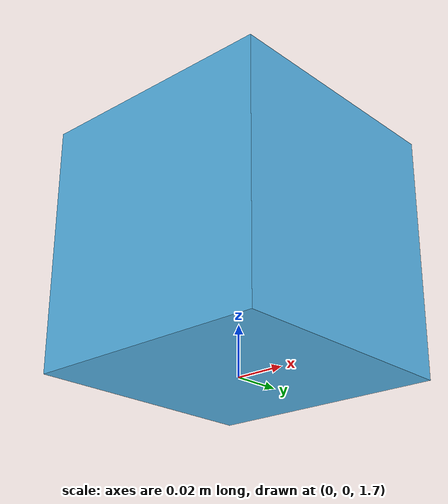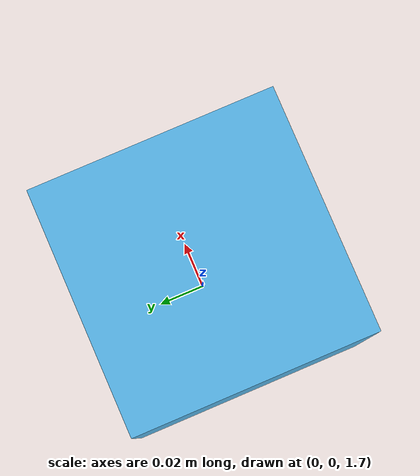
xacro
<?xml version="1.0"?>
<robot xmlns:xacro="http://www.ros.org/wiki/xacro" name="example">
  <!-- Base Footprint -->
  <link name="base_footprint" />

  <!-- Base Link -->
  <joint name="footprint" type="fixed" >
   <parent link="base_footprint" />
    <child link="base_link" />
    <origin xyz="0 0 1.75" rpy="0 0 0" />
  </joint>
  <link name="base_link" >
    <visual>
      <geometry>
        <box size="0.1 0.1 0.1" />
      </geometry>
    </visual>
    <collision>
      <geometry>
        <box size="0.1 0.1 0.1" />
      </geometry>
    </collision>
    <inertial>
      <origin xyz="0 0 0"/>
      <mass value="10"/>
      <inertia ixx="3.0" ixy="0.0" ixz="0.0"
               iyy="3.0" iyz="0.0"
               izz="3.0" />
    </inertial>
  </link>

  <!-- kinect -->
  <xacro:include filename="$(find my_sim)/urdf/rgbd_camera.urdf.xacro"/>
  <xacro:rgbd_camera name="kinect" parent="base_link">
    <origin xyz="0 0 0" rpy="0 0 0"/>
  </xacro:rgbd_camera>
  <gazebo>
    <plugin name="tf_world_robot" filename="libgazebo_ros_p3d.so">
      <updateRate>100.0</updateRate>
      <bodyName>base_link</bodyName>
      <topicName>ground_truth/state</topicName>
      <gaussianNoise>0.0</gaussianNoise>
      <frameName>world</frameName>
    </plugin>
  </gazebo>
</robot>

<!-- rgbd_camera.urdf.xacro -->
<robot xmlns:xacro="http://ros.org/wiki/xacro">
  <xacro:property name="M_PI" value="3.1415926535897931"/>

  <xacro:macro name="rgbd_camera_model" params="name parent *origin">
    <joint name="${name}_joint" type="fixed">
      <xacro:insert_block name="origin"/>
      <parent link="${parent}"/>
      <child link="${name}_link"/>
    </joint>

    <link name="${name}_link"/>

    <joint name="${name}_optical_joint" type="fixed">
      <origin xyz="0 0 0" rpy="${-M_PI/2} 0.0 ${-M_PI/2}"/>
      <parent link="${name}_link"/>
      <child link="${name}_optical_frame"/>
    </joint>

    <link name="${name}_optical_frame"/>
  </xacro:macro>

  <xacro:macro name="rgbd_camera" params="name parent *origin">
    <xacro:rgbd_camera_model name="${name}" parent="${parent}">
      <xacro:insert_block name="origin"/>
    </xacro:rgbd_camera_model>

    <gazebo reference="${name}_link">
      <sensor type="depth" name="${name}">
        <update_rate>20</update_rate>
        <camera>
          <horizontal_fov>${60 * M_PI / 180.0}</horizontal_fov>
          <image>
            <format>B8G8R8</format>
            <width>640</width>
            <height>480</height>
          </image>
        </camera>
        <plugin name="${name}_rgbd_camera_cnotroller" filename="libgazebo_ros_openni_kinect.so">
          <cameraName>${name}</cameraName>
          <imageTopicName>${name}/rgb/image_raw</imageTopicName>
          <cameraInfoTopicName>${name}/rgb/camera_info</cameraInfoTopicName>
          <depthImageTopicName>${name}/depth/image_raw</depthImageTopicName>
          <depthImageCameraInfoTopicName>${name}/depth/camera_info</depthImageCameraInfoTopicName>
          <pointCloudTopicName>${name}/depth/points</pointCloudTopicName>
          <frameName>${name}_optical_frame</frameName>
        </plugin>
      </sensor>
    </gazebo>
  </xacro:macro>
</robot>
